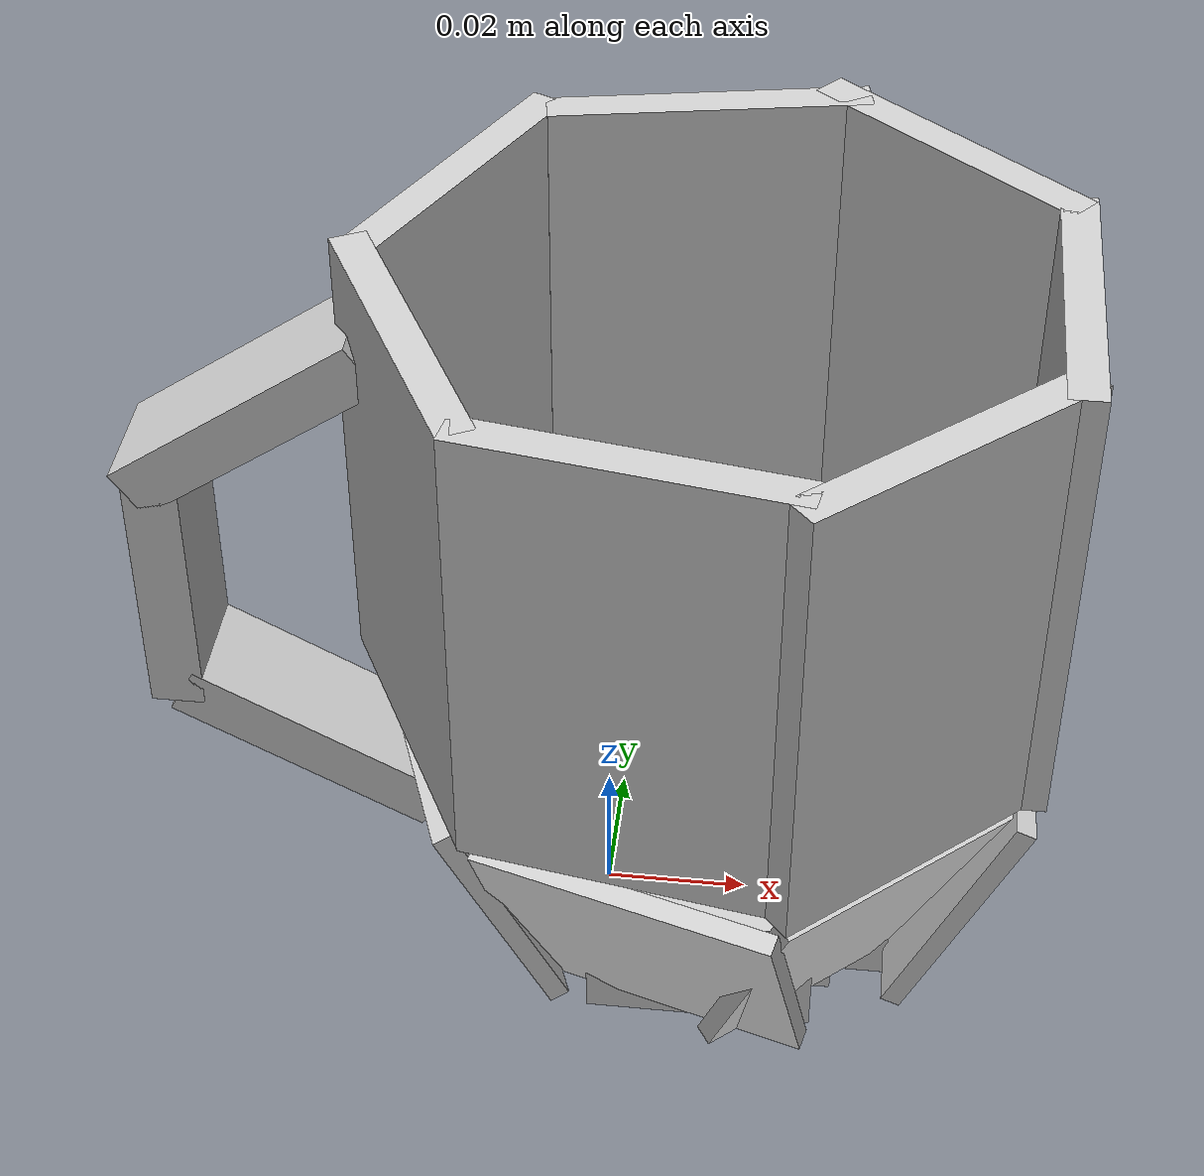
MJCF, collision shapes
<mujoco model="porcelain_mug">
  <asset>
  <texture file="porcelain_mug_texture.png" name="tex-porcelain_mug" type="2d" />
  <material name="porcelain_mug" reflectance="0.5" texrepeat="1 1" texture="tex-porcelain_mug" texuniform="false" />
  <mesh file="visual/porcelain_mug_vis.msh" name="porcelain_mug_vis" scale="1.0 1.0 1.0" /></asset>
  <worldbody>
    <body>
      <body name="object">
      <geom solimp="0.998 0.998 0.001" solref="0.001 1" density="100" friction="0.95 0.3 0.1" type="mesh" mesh="porcelain_mug_vis" conaffinity="0" contype="0" group="1" material="porcelain_mug" /><geom solimp="0.998 0.998 0.001" solref="0.001 1" density="100" friction="0.95 0.3 0.1" type="box" pos="-0.05953 -0.00000 0.05602" quat="0.00000 0.00000 1.00000 0.00000" size="0.00376 0.00797 0.01975" group="0" rgba="0.8 0.8 0.8 0.3" /><geom solimp="0.998 0.998 0.001" solref="0.001 1" density="100" friction="0.95 0.3 0.1" type="box" pos="-0.04158 0.00000 0.02862" quat="0.50997 -0.00000 0.86019 -0.00000" size="0.00376 0.00797 0.01975" group="0" rgba="0.8 0.8 0.8 0.3" /><geom solimp="0.998 0.998 0.001" solref="0.001 1" density="100" friction="0.95 0.3 0.1" type="box" pos="-0.04630 -0.00000 0.08342" quat="0.46390 0.00000 -0.88589 0.00000" size="0.00376 0.00797 0.01975" group="0" rgba="0.8 0.8 0.8 0.3" /><geom solimp="0.998 0.998 0.001" solref="0.001 1" density="100" friction="0.95 0.3 0.1" type="box" pos="0.05678 -0.00147 0.07585" quat="0.00000 0.00000 1.00000 0.00000" size="0.00243 0.02163 0.03261" group="0" rgba="0.8 0.8 0.8 0.3" /><geom solimp="0.998 0.998 0.001" solref="0.001 1" density="100" friction="0.95 0.3 0.1" type="box" pos="0.01477 -0.00164 0.00760" quat="0.50000 -0.50000 0.50000 0.50000" size="0.00521 0.01860 0.01860" group="0" rgba="0.8 0.8 0.8 0.3" /><geom solimp="0.998 0.998 0.001" solref="0.001 1" density="100" friction="0.95 0.3 0.1" type="box" pos="0.04935 -0.00403 0.02390" quat="0.69215 0.69215 0.14468 -0.14468" size="0.00141 0.01889 0.02163" group="0" rgba="0.8 0.8 0.8 0.3" /><geom solimp="0.998 0.998 0.001" solref="0.001 1" density="100" friction="0.95 0.3 0.1" type="box" pos="0.03912 0.02444 0.02390" quat="0.68797 0.56492 0.42528 0.16339" size="0.00132 0.01866 0.01909" group="0" rgba="0.8 0.8 0.8 0.3" /><geom solimp="0.998 0.998 0.001" solref="0.001 1" density="100" friction="0.95 0.3 0.1" type="box" pos="0.04086 0.03118 0.07585" quat="0.00000 -0.42525 0.90508 0.00000" size="0.00243 0.02163 0.03261" group="0" rgba="0.8 0.8 0.8 0.3" /><geom solimp="0.998 0.998 0.001" solref="0.001 1" density="100" friction="0.95 0.3 0.1" type="box" pos="0.00878 0.03868 0.07585" quat="0.00000 -0.76965 0.63846 0.00000" size="0.00243 0.02163 0.03261" group="0" rgba="0.8 0.8 0.8 0.3" /><geom solimp="0.998 0.998 0.001" solref="0.001 1" density="100" friction="0.95 0.3 0.1" type="box" pos="0.01069 0.02867 0.02390" quat="0.55326 0.33057 0.62508 0.44034" size="0.00141 0.01889 0.02163" group="0" rgba="0.8 0.8 0.8 0.3" /><geom solimp="0.998 0.998 0.001" solref="0.001 1" density="100" friction="0.95 0.3 0.1" type="box" pos="-0.01139 0.01272 0.02390" quat="0.01588 -0.29770 -0.64138 0.70693" size="0.00141 0.01889 0.02163" group="0" rgba="0.8 0.8 0.8 0.3" /><geom solimp="0.998 0.998 0.001" solref="0.001 1" density="100" friction="0.95 0.3 0.1" type="box" pos="-0.02192 0.01787 0.07585" quat="0.00000 -0.97400 0.22653 0.00000" size="0.00243 0.02163 0.03261" group="0" rgba="0.8 0.8 0.8 0.3" /><geom solimp="0.998 0.998 0.001" solref="0.001 1" density="100" friction="0.95 0.3 0.1" type="box" pos="-0.02287 -0.01804 0.07585" quat="0.00000 -0.23315 0.97244 0.00000" size="0.00244 0.02163 0.03261" group="0" rgba="0.8 0.8 0.8 0.3" /><geom solimp="0.998 0.998 0.001" solref="0.001 1" density="100" friction="0.95 0.3 0.1" type="box" pos="-0.01749 -0.01375 0.02390" quat="0.02182 -0.26310 0.65634 0.70677" size="0.00140 0.01886 0.01992" group="0" rgba="0.8 0.8 0.8 0.3" /><geom solimp="0.998 0.998 0.001" solref="0.001 1" density="100" friction="0.95 0.3 0.1" type="box" pos="0.00826 -0.03498 0.02390" quat="0.52881 -0.29653 0.64193 -0.46942" size="0.00141 0.01888 0.02069" group="0" rgba="0.8 0.8 0.8 0.3" /><geom solimp="0.998 0.998 0.001" solref="0.001 1" density="100" friction="0.95 0.3 0.1" type="box" pos="0.00646 -0.03994 0.07585" quat="-0.00000 -0.76567 -0.64323 -0.00000" size="0.00243 0.02163 0.03261" group="0" rgba="0.8 0.8 0.8 0.3" /><geom solimp="0.998 0.998 0.001" solref="0.001 1" density="100" friction="0.95 0.3 0.1" type="box" pos="0.04172 -0.03247 0.07585" quat="0.00000 0.41049 0.91187 0.00000" size="0.00243 0.02163 0.03261" group="0" rgba="0.8 0.8 0.8 0.3" /><geom solimp="0.998 0.998 0.001" solref="0.001 1" density="100" friction="0.95 0.3 0.1" type="box" pos="0.03790 -0.02581 0.02390" quat="0.69053 -0.57176 0.41604 -0.15219" size="0.00141 0.01889 0.02163" group="0" rgba="0.8 0.8 0.8 0.3" /><geom solimp="0.998 0.998 0.001" solref="0.001 1" density="100" friction="0.95 0.3 0.1" type="box" pos="0.01529 -0.02391 0.00760" quat="0.50000 0.50000 -0.50000 -0.50000" size="0.00326 0.00521 0.01554" group="0" rgba="0.8 0.8 0.8 0.3" /><geom solimp="0.998 0.998 0.001" solref="0.001 1" density="100" friction="0.95 0.3 0.1" type="box" pos="0.03749 -0.00017 0.00760" quat="0.70711 0.70711 0.00000 -0.00000" size="0.00360 0.00521 0.01643" group="0" rgba="0.8 0.8 0.8 0.3" /><geom solimp="0.998 0.998 0.001" solref="0.001 1" density="100" friction="0.95 0.3 0.1" type="box" pos="-0.00524 -0.00421 0.00760" quat="0.70711 0.70711 0.00000 -0.00000" size="0.00360 0.00521 0.01643" group="0" rgba="0.8 0.8 0.8 0.3" /><geom solimp="0.998 0.998 0.001" solref="0.001 1" density="100" friction="0.95 0.3 0.1" type="box" pos="0.01529 0.01887 0.00760" quat="0.50000 0.50000 -0.50000 -0.50000" size="0.00326 0.00521 0.01554" group="0" rgba="0.8 0.8 0.8 0.3" /></body>
      <site rgba="0 0 0 0" size="0.005" pos="0 0 -0.06" name="bottom_site" />
      <site rgba="0 0 0 0" size="0.005" pos="0 0 0.04" name="top_site" />
      <!-- robosuite placement uses only site pos[0] as XY radius; was 0.025 (too small → overlapping spawns). -->
      <site rgba="0 0 0 0" size="0.005" pos="0.08 0.08 0" name="horizontal_radius_site" />
    </body>
  </worldbody>
</mujoco>
